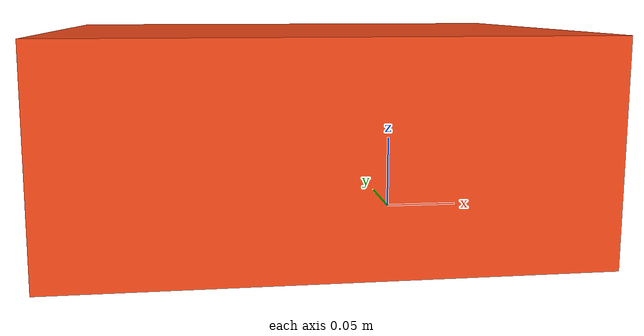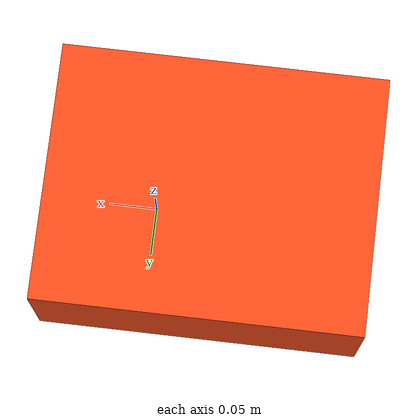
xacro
<?xml version="1.0"?>
<robot xmlns:xacro="http://www.ros.org/wiki/xacro" >

    <xacro:include filename="inertial_macros.xacro"/>

    <xacro:property name="chassis_length" value="0.335"/>
    <xacro:property name="chassis_width" value="0.265"/>
    <xacro:property name="chassis_height" value="0.138"/>
    <xacro:property name="chassis_mass" value="1.0"/>
    <xacro:property name="wheel_radius" value="0.033"/>
    <xacro:property name="wheel_thickness" value="0.026"/>
    <xacro:property name="wheel_mass" value="0.05"/>
    <xacro:property name="wheel_offset_x" value="0.226"/>
    <xacro:property name="wheel_offset_y" value="0.1485"/>
    <xacro:property name="wheel_offset_z" value="0.01"/>
    <xacro:property name="caster_wheel_radius" value="0.01"/>
    <xacro:property name="caster_wheel_mass" value="0.01"/>
    <xacro:property name="caster_wheel_offset_x" value="0.075"/>
    <xacro:property name="caster_wheel_offset_z" value="${wheel_offset_z - wheel_radius + caster_wheel_radius}"/>

    <material name="white">
        <color rgba="1 1 1 1" />
    </material>

    <material name="orange">
        <color rgba="1 0.3 0.1 1"/>
    </material>

    <material name="blue">
        <color rgba="0.2 0.2 1 1"/>
    </material>

    <material name="black">
        <color rgba="0 0 0 1"/>
    </material>

    <material name="red">
        <color rgba="1 0 0 1"/>
    </material>

    <!-- BASE LINK -->

    <link name="base_link">

    </link>

    <!-- BASE_FOOTPRINT LINK -->

    <joint name="base_footprint_joint" type="fixed">
        <parent link="base_link"/>
        <child link="base_footprint"/>
        <origin xyz="0 0 0" rpy="0 0 0"/>
    </joint>

    <link name="base_footprint">
    </link>

    <!-- CHASSIS LINK -->

    <joint name="chassis_joint" type="fixed">
        <parent link="base_link"/>
        <child link="chassis"/>
        <origin xyz="${-wheel_offset_x} 0 ${-wheel_offset_z}"/>
    </joint>

    <link name="chassis">
        <visual>
            <origin xyz="${chassis_length/2} 0 ${chassis_height/2}"/>
            <geometry>
                <box size="${chassis_length} ${chassis_width} ${chassis_height}"/>
            </geometry>
            <material name="orange"/>
        </visual>
        <collision>
            <origin xyz="${chassis_length/2} 0 ${chassis_height/2}"/>
            <geometry>
                <box size="${chassis_length} ${chassis_width} ${chassis_height}"/>
            </geometry>
        </collision>
        <xacro:inertial_box mass="0.5" x="${chassis_length}" y="${chassis_width}" z="${chassis_height}">
            <origin xyz="${chassis_length/2} 0 ${chassis_height/2}" rpy="0 0 0"/>
        </xacro:inertial_box>
    </link>

    <gazebo reference="chassis">
        <material>Gazebo/Orange</material>
    </gazebo>

</robot>
